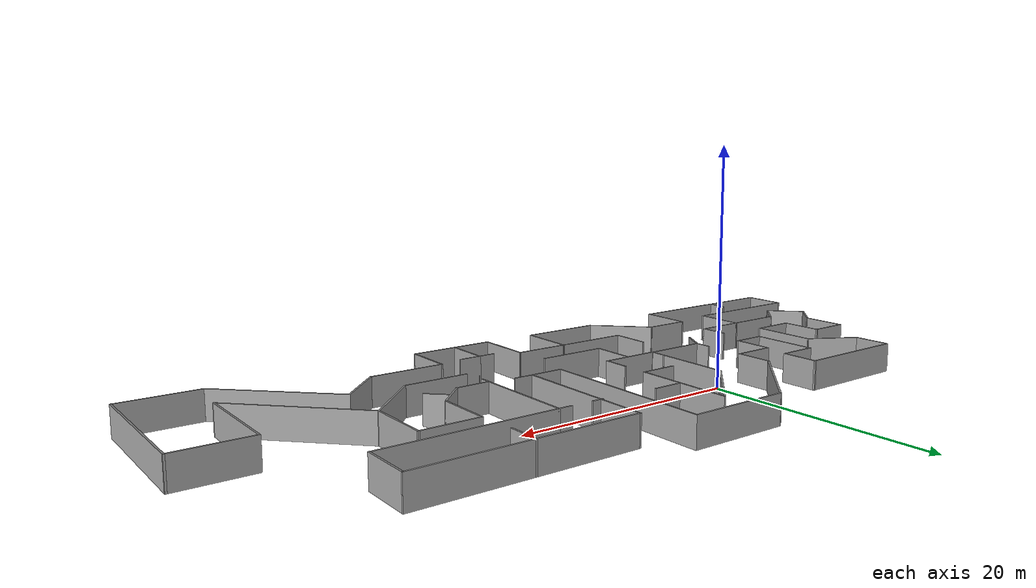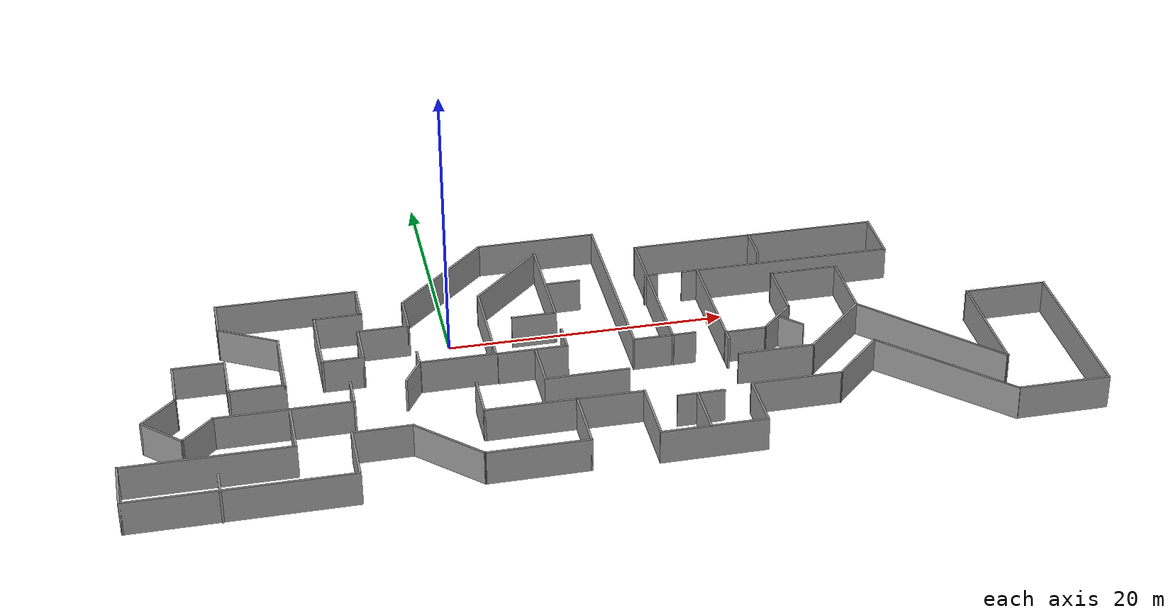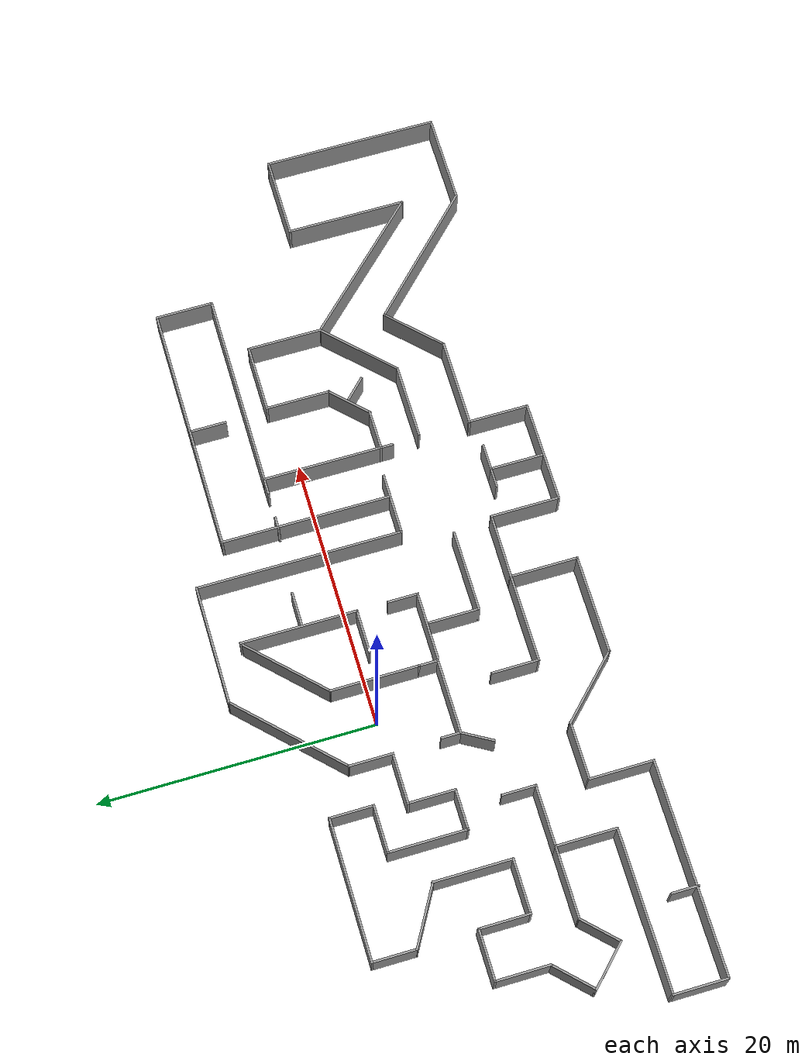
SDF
<?xml version='1.0'?>
<sdf version='1.6'>
  <model name='my_building'>
    <pose frame=''>9.70169 -3.83811 0 0 -0 0</pose>
    <link name='Wall_100'>
      <collision name='Wall_100_Collision'>
        <geometry>
          <box>
            <size>4.75 0.15 2.5</size>
          </box>
        </geometry>
        <pose frame=''>0 0 1.25 0 -0 0</pose>
      </collision>
      <visual name='Wall_100_Visual'>
        <pose frame=''>0 0 1.25 0 -0 0</pose>
        <geometry>
          <box>
            <size>4.75 0.15 2.5</size>
          </box>
        </geometry>
        <material>
          <script>
            <uri>file://media/materials/scripts/gazebo.material</uri>
            <name>Gazebo/Grey</name>
          </script>
          <ambient>1 1 1 1</ambient>
        </material>
      </visual>
      <pose frame=''>14.3736 2.68868 0 0 0 -1.5708</pose>
    </link>
    <link name='Wall_101'>
      <collision name='Wall_101_Collision'>
        <geometry>
          <box>
            <size>3.5 0.15 2.5</size>
          </box>
        </geometry>
        <pose frame=''>0 0 1.25 0 -0 0</pose>
      </collision>
      <visual name='Wall_101_Visual'>
        <pose frame=''>0 0 1.25 0 -0 0</pose>
        <geometry>
          <box>
            <size>3.5 0.15 2.5</size>
          </box>
        </geometry>
        <material>
          <script>
            <uri>file://media/materials/scripts/gazebo.material</uri>
            <name>Gazebo/Grey</name>
          </script>
          <ambient>1 1 1 1</ambient>
        </material>
      </visual>
      <pose frame=''>13.1892 -0.795726 0 0 0 -2.35619</pose>
    </link>
    <link name='Wall_102'>
      <collision name='Wall_102_Collision'>
        <geometry>
          <box>
            <size>3 0.15 2.5</size>
          </box>
        </geometry>
        <pose frame=''>0 0 1.25 0 -0 0</pose>
      </collision>
      <visual name='Wall_102_Visual'>
        <pose frame=''>0 0 1.25 0 -0 0</pose>
        <geometry>
          <box>
            <size>3 0.15 2.5</size>
          </box>
        </geometry>
        <material>
          <script>
            <uri>file://media/materials/scripts/gazebo.material</uri>
            <name>Gazebo/Grey</name>
          </script>
          <ambient>1 1 1 1</ambient>
        </material>
      </visual>
      <pose frame=''>10.5798 -1.98013 0 0 -0 3.14159</pose>
    </link>
    <link name='Wall_103'>
      <collision name='Wall_103_Collision'>
        <geometry>
          <box>
            <size>8.75 0.15 2.5</size>
          </box>
        </geometry>
        <pose frame=''>0 0 1.25 0 -0 0</pose>
      </collision>
      <visual name='Wall_103_Visual'>
        <pose frame=''>0 0 1.25 0 -0 0</pose>
        <geometry>
          <box>
            <size>8.75 0.15 2.5</size>
          </box>
        </geometry>
        <material>
          <script>
            <uri>file://media/materials/scripts/gazebo.material</uri>
            <name>Gazebo/Grey</name>
          </script>
          <ambient>1 1 1 1</ambient>
        </material>
      </visual>
      <pose frame=''>9.15481 2.31987 0 0 -0 1.5708</pose>
    </link>
    <link name='Wall_104'>
      <collision name='Wall_104_Collision'>
        <geometry>
          <box>
            <size>14.5 0.15 2.5</size>
          </box>
        </geometry>
        <pose frame=''>0 0 1.25 0 -0 0</pose>
      </collision>
      <visual name='Wall_104_Visual'>
        <pose frame=''>0 0 1.25 0 -0 0</pose>
        <geometry>
          <box>
            <size>14.5 0.15 2.5</size>
          </box>
        </geometry>
        <material>
          <script>
            <uri>file://media/materials/scripts/gazebo.material</uri>
            <name>Gazebo/Grey</name>
          </script>
          <ambient>1 1 1 1</ambient>
        </material>
      </visual>
      <pose frame=''>16.3298 6.61987 0 0 -0 0</pose>
    </link>
    <link name='Wall_105'>
      <collision name='Wall_105_Collision'>
        <geometry>
          <box>
            <size>4.25 0.15 2.5</size>
          </box>
        </geometry>
        <pose frame=''>0 0 1.25 0 -0 0</pose>
      </collision>
      <visual name='Wall_105_Visual'>
        <pose frame=''>0 0 1.25 0 -0 0</pose>
        <geometry>
          <box>
            <size>4.25 0.15 2.5</size>
          </box>
        </geometry>
        <material>
          <script>
            <uri>file://media/materials/scripts/gazebo.material</uri>
            <name>Gazebo/Grey</name>
          </script>
          <ambient>1 1 1 1</ambient>
        </material>
      </visual>
      <pose frame=''>23.5048 8.66987 0 0 -0 1.5708</pose>
    </link>
    <link name='Wall_106'>
      <collision name='Wall_106_Collision'>
        <geometry>
          <box>
            <size>18.25 0.15 2.5</size>
          </box>
        </geometry>
        <pose frame=''>0 0 1.25 0 -0 0</pose>
      </collision>
      <visual name='Wall_106_Visual'>
        <pose frame=''>0 0 1.25 0 -0 0</pose>
        <geometry>
          <box>
            <size>18.25 0.15 2.5</size>
          </box>
        </geometry>
        <material>
          <script>
            <uri>file://media/materials/scripts/gazebo.material</uri>
            <name>Gazebo/Grey</name>
          </script>
          <ambient>1 1 1 1</ambient>
        </material>
      </visual>
      <pose frame=''>14.4548 10.7199 0 0 -0 3.14159</pose>
    </link>
    <link name='Wall_107'>
      <collision name='Wall_107_Collision'>
        <geometry>
          <box>
            <size>12.4198 0.15 2.5</size>
          </box>
        </geometry>
        <pose frame=''>0 0 1.25 0 -0 0</pose>
      </collision>
      <visual name='Wall_107_Visual'>
        <pose frame=''>0 0 1.25 0 -0 0</pose>
        <geometry>
          <box>
            <size>12.4198 0.15 2.5</size>
          </box>
        </geometry>
        <material>
          <script>
            <uri>file://media/materials/scripts/gazebo.material</uri>
            <name>Gazebo/Grey</name>
          </script>
          <ambient>1 1 1 1</ambient>
        </material>
      </visual>
      <pose frame=''>5.40481 4.5851 0 0 0 -1.5708</pose>
    </link>
    <link name='Wall_113'>
      <collision name='Wall_113_Collision'>
        <geometry>
          <box>
            <size>5 0.15 2.5</size>
          </box>
        </geometry>
        <pose frame=''>0 0 1.25 0 -0 0</pose>
      </collision>
      <visual name='Wall_113_Visual'>
        <pose frame=''>0 0 1.25 0 -0 0</pose>
        <geometry>
          <box>
            <size>5 0.15 2.5</size>
          </box>
        </geometry>
        <material>
          <script>
            <uri>file://media/materials/scripts/gazebo.material</uri>
            <name>Gazebo/Grey</name>
          </script>
          <ambient>1 1 1 1</ambient>
        </material>
      </visual>
      <pose frame=''>-4.53458 -1.30691 0 0 -0 3.14159</pose>
    </link>
    <link name='Wall_115'>
      <collision name='Wall_115_Collision'>
        <geometry>
          <box>
            <size>0.16 0.15 2.5</size>
          </box>
        </geometry>
        <pose frame=''>0 0 1.25 0 -0 0</pose>
      </collision>
      <visual name='Wall_115_Visual'>
        <pose frame=''>0 0 1.25 0 -0 0</pose>
        <geometry>
          <box>
            <size>0.16 0.15 2.5</size>
          </box>
        </geometry>
        <material>
          <script>
            <uri>file://media/materials/scripts/gazebo.material</uri>
            <name>Gazebo/Grey</name>
          </script>
          <ambient>1 1 1 1</ambient>
        </material>
      </visual>
      <pose frame=''>-7.13199 0.094135 0 0 -0 0</pose>
    </link>
    <link name='Wall_117'>
      <collision name='Wall_117_Collision'>
        <geometry>
          <box>
            <size>1.5 0.15 2.5</size>
          </box>
        </geometry>
        <pose frame=''>0 0 1.25 0 -0 0</pose>
      </collision>
      <visual name='Wall_117_Visual'>
        <pose frame=''>0 0 1.25 0 -0 0</pose>
        <geometry>
          <box>
            <size>1.5 0.15 2.5</size>
          </box>
        </geometry>
        <material>
          <script>
            <uri>file://media/materials/scripts/gazebo.material</uri>
            <name>Gazebo/Grey</name>
          </script>
          <ambient>1 1 1 1</ambient>
        </material>
      </visual>
      <pose frame=''>-7.13699 -0.580865 0 0 0 -1.5708</pose>
    </link>
    <link name='Wall_123'>
      <collision name='Wall_123_Collision'>
        <geometry>
          <box>
            <size>8.5 0.15 2.5</size>
          </box>
        </geometry>
        <pose frame=''>0 0 1.25 0 -0 0</pose>
      </collision>
      <visual name='Wall_123_Visual'>
        <pose frame=''>0 0 1.25 0 -0 0</pose>
        <geometry>
          <box>
            <size>8.5 0.15 2.5</size>
          </box>
        </geometry>
        <material>
          <script>
            <uri>file://media/materials/scripts/gazebo.material</uri>
            <name>Gazebo/Grey</name>
          </script>
          <ambient>1 1 1 1</ambient>
        </material>
      </visual>
      <pose frame=''>-2.10958 7.25529 0 0 -0 1.5708</pose>
    </link>
    <link name='Wall_125'>
      <collision name='Wall_125_Collision'>
        <geometry>
          <box>
            <size>8.75864 0.15 2.5</size>
          </box>
        </geometry>
        <pose frame=''>0 0 1.25 0 -0 0</pose>
      </collision>
      <visual name='Wall_125_Visual'>
        <pose frame=''>0 0 1.25 0 -0 0</pose>
        <geometry>
          <box>
            <size>8.75864 0.15 2.5</size>
          </box>
        </geometry>
        <material>
          <script>
            <uri>file://media/materials/scripts/gazebo.material</uri>
            <name>Gazebo/Grey</name>
          </script>
          <ambient>1 1 1 1</ambient>
        </material>
      </visual>
      <pose frame=''>-1.68005 13.3056 0 0 -0 0</pose>
    </link>
    <link name='Wall_128'>
      <collision name='Wall_128_Collision'>
        <geometry>
          <box>
            <size>15 0.15 2.5</size>
          </box>
        </geometry>
        <pose frame=''>0 0 1.25 0 -0 0</pose>
      </collision>
      <visual name='Wall_128_Visual'>
        <pose frame=''>0 0 1.25 0 -0 0</pose>
        <geometry>
          <box>
            <size>15 0.15 2.5</size>
          </box>
        </geometry>
        <material>
          <script>
            <uri>file://media/materials/scripts/gazebo.material</uri>
            <name>Gazebo/Grey</name>
          </script>
          <ambient>1 1 1 1</ambient>
        </material>
      </visual>
      <pose frame=''>2.62427 5.88058 0 0 0 -1.5708</pose>
    </link>
    <link name='Wall_129'>
      <collision name='Wall_129_Collision'>
        <geometry>
          <box>
            <size>2.93054 0.15 2.5</size>
          </box>
        </geometry>
        <pose frame=''>0 0 1.25 0 -0 0</pose>
      </collision>
      <visual name='Wall_129_Visual'>
        <pose frame=''>0 0 1.25 0 -0 0</pose>
        <geometry>
          <box>
            <size>2.93054 0.15 2.5</size>
          </box>
        </geometry>
        <material>
          <script>
            <uri>file://media/materials/scripts/gazebo.material</uri>
            <name>Gazebo/Grey</name>
          </script>
          <ambient>1 1 1 1</ambient>
        </material>
      </visual>
      <pose frame=''>4.01454 -1.54705 0 0 0 -0.001891</pose>
    </link>
    <link name='Wall_131'>
      <collision name='Wall_131_Collision'>
        <geometry>
          <box>
            <size>3.75 0.15 2.5</size>
          </box>
        </geometry>
        <pose frame=''>0 0 1.25 0 -0 0</pose>
      </collision>
      <visual name='Wall_131_Visual'>
        <pose frame=''>0 0 1.25 0 -0 0</pose>
        <geometry>
          <box>
            <size>3.75 0.15 2.5</size>
          </box>
        </geometry>
        <material>
          <script>
            <uri>file://media/materials/scripts/gazebo.material</uri>
            <name>Gazebo/Grey</name>
          </script>
          <ambient>1 1 1 1</ambient>
        </material>
      </visual>
      <pose frame=''>-4.35816 -3.27202 0 0 0 -1.5708</pose>
    </link>
    <link name='Wall_133'>
      <collision name='Wall_133_Collision'>
        <geometry>
          <box>
            <size>5.5 0.15 2.5</size>
          </box>
        </geometry>
        <pose frame=''>0 0 1.25 0 -0 0</pose>
      </collision>
      <visual name='Wall_133_Visual'>
        <pose frame=''>0 0 1.25 0 -0 0</pose>
        <geometry>
          <box>
            <size>5.5 0.15 2.5</size>
          </box>
        </geometry>
        <material>
          <script>
            <uri>file://media/materials/scripts/gazebo.material</uri>
            <name>Gazebo/Grey</name>
          </script>
          <ambient>1 1 1 1</ambient>
        </material>
      </visual>
      <pose frame=''>-9.81199 -1.25587 0 0 -0 3.14159</pose>
    </link>
    <link name='Wall_134'>
      <collision name='Wall_134_Collision'>
        <geometry>
          <box>
            <size>2.5 0.15 2.5</size>
          </box>
        </geometry>
        <pose frame=''>0 0 1.25 0 -0 0</pose>
      </collision>
      <visual name='Wall_134_Visual'>
        <pose frame=''>0 0 1.25 0 -0 0</pose>
        <geometry>
          <box>
            <size>2.5 0.15 2.5</size>
          </box>
        </geometry>
        <material>
          <script>
            <uri>file://media/materials/scripts/gazebo.material</uri>
            <name>Gazebo/Grey</name>
          </script>
          <ambient>1 1 1 1</ambient>
        </material>
      </visual>
      <pose frame=''>-13.0745 -2.27345 0 0 0 -2.0944</pose>
    </link>
    <link name='Wall_136'>
      <collision name='Wall_136_Collision'>
        <geometry>
          <box>
            <size>2.25 0.15 2.5</size>
          </box>
        </geometry>
        <pose frame=''>0 0 1.25 0 -0 0</pose>
      </collision>
      <visual name='Wall_136_Visual'>
        <pose frame=''>0 0 1.25 0 -0 0</pose>
        <geometry>
          <box>
            <size>2.25 0.15 2.5</size>
          </box>
        </geometry>
        <material>
          <script>
            <uri>file://media/materials/scripts/gazebo.material</uri>
            <name>Gazebo/Grey</name>
          </script>
          <ambient>1 1 1 1</ambient>
        </material>
      </visual>
      <pose frame=''>-2.10958 -0.256906 0 0 -0 1.5708</pose>
    </link>
    <link name='Wall_138'>
      <collision name='Wall_138_Collision'>
        <geometry>
          <box>
            <size>1.25 0.15 2.5</size>
          </box>
        </geometry>
        <pose frame=''>0 0 1.25 0 -0 0</pose>
      </collision>
      <visual name='Wall_138_Visual'>
        <pose frame=''>0 0 1.25 0 -0 0</pose>
        <geometry>
          <box>
            <size>1.25 0.15 2.5</size>
          </box>
        </geometry>
        <material>
          <script>
            <uri>file://media/materials/scripts/gazebo.material</uri>
            <name>Gazebo/Grey</name>
          </script>
          <ambient>1 1 1 1</ambient>
        </material>
      </visual>
      <pose frame=''>8.60481 6.61987 0 0 -0 3.14159</pose>
    </link>
    <link name='Wall_140'>
      <collision name='Wall_140_Collision'>
        <geometry>
          <box>
            <size>1 0.15 2.5</size>
          </box>
        </geometry>
        <pose frame=''>0 0 1.25 0 -0 0</pose>
      </collision>
      <visual name='Wall_140_Visual'>
        <pose frame=''>0 0 1.25 0 -0 0</pose>
        <geometry>
          <box>
            <size>1 0.15 2.5</size>
          </box>
        </geometry>
        <material>
          <script>
            <uri>file://media/materials/scripts/gazebo.material</uri>
            <name>Gazebo/Grey</name>
          </script>
          <ambient>1 1 1 1</ambient>
        </material>
      </visual>
      <pose frame=''>5.69542 6.6561 0 0 -0 0</pose>
    </link>
    <link name='Wall_142'>
      <collision name='Wall_142_Collision'>
        <geometry>
          <box>
            <size>2.75 0.15 2.5</size>
          </box>
        </geometry>
        <pose frame=''>0 0 1.25 0 -0 0</pose>
      </collision>
      <visual name='Wall_142_Visual'>
        <pose frame=''>0 0 1.25 0 -0 0</pose>
        <geometry>
          <box>
            <size>2.75 0.15 2.5</size>
          </box>
        </geometry>
        <material>
          <script>
            <uri>file://media/materials/scripts/gazebo.material</uri>
            <name>Gazebo/Grey</name>
          </script>
          <ambient>1 1 1 1</ambient>
        </material>
      </visual>
      <pose frame=''>14.1526 9.42709 0 0 0 -1.5708</pose>
    </link>
    <link name='Wall_144'>
      <collision name='Wall_144_Collision'>
        <geometry>
          <box>
            <size>2 0.15 2.5</size>
          </box>
        </geometry>
        <pose frame=''>0 0 1.25 0 -0 0</pose>
      </collision>
      <visual name='Wall_144_Visual'>
        <pose frame=''>0 0 1.25 0 -0 0</pose>
        <geometry>
          <box>
            <size>2 0.15 2.5</size>
          </box>
        </geometry>
        <material>
          <script>
            <uri>file://media/materials/scripts/gazebo.material</uri>
            <name>Gazebo/Grey</name>
          </script>
          <ambient>1 1 1 1</ambient>
        </material>
      </visual>
      <pose frame=''>14.0665 -1.49229 0 0 0 -0.785398</pose>
    </link>
    <link name='Wall_146'>
      <collision name='Wall_146_Collision'>
        <geometry>
          <box>
            <size>1 0.15 2.5</size>
          </box>
        </geometry>
        <pose frame=''>0 0 1.25 0 -0 0</pose>
      </collision>
      <visual name='Wall_146_Visual'>
        <pose frame=''>0 0 1.25 0 -0 0</pose>
        <geometry>
          <box>
            <size>1 0.15 2.5</size>
          </box>
        </geometry>
        <material>
          <script>
            <uri>file://media/materials/scripts/gazebo.material</uri>
            <name>Gazebo/Grey</name>
          </script>
          <ambient>1 1 1 1</ambient>
        </material>
      </visual>
      <pose frame=''>9.15481 -2.40513 0 0 0 -1.5708</pose>
    </link>
    <link name='Wall_151'>
      <collision name='Wall_151_Collision'>
        <geometry>
          <box>
            <size>2.5 0.15 2.5</size>
          </box>
        </geometry>
        <pose frame=''>0 0 1.25 0 -0 0</pose>
      </collision>
      <visual name='Wall_151_Visual'>
        <pose frame=''>0 0 1.25 0 -0 0</pose>
        <geometry>
          <box>
            <size>2.5 0.15 2.5</size>
          </box>
        </geometry>
        <material>
          <script>
            <uri>file://media/materials/scripts/gazebo.material</uri>
            <name>Gazebo/Grey</name>
          </script>
          <ambient>1 1 1 1</ambient>
        </material>
      </visual>
      <pose frame=''>-0.798896 7.02619 0 0 -0 0</pose>
    </link>
    <link name='Wall_153'>
      <collision name='Wall_153_Collision'>
        <geometry>
          <box>
            <size>1.75 0.15 2.5</size>
          </box>
        </geometry>
        <pose frame=''>0 0 1.25 0 -0 0</pose>
      </collision>
      <visual name='Wall_153_Visual'>
        <pose frame=''>0 0 1.25 0 -0 0</pose>
        <geometry>
          <box>
            <size>1.75 0.15 2.5</size>
          </box>
        </geometry>
        <material>
          <script>
            <uri>file://media/materials/scripts/gazebo.material</uri>
            <name>Gazebo/Grey</name>
          </script>
          <ambient>1 1 1 1</ambient>
        </material>
      </visual>
      <pose frame=''>6.20481 -1.54967 0 0 -0 0</pose>
    </link>
    <link name='Wall_155'>
      <collision name='Wall_155_Collision'>
        <geometry>
          <box>
            <size>1.5 0.15 2.5</size>
          </box>
        </geometry>
        <pose frame=''>0 0 1.25 0 -0 0</pose>
      </collision>
      <visual name='Wall_155_Visual'>
        <pose frame=''>0 0 1.25 0 -0 0</pose>
        <geometry>
          <box>
            <size>1.5 0.15 2.5</size>
          </box>
        </geometry>
        <material>
          <script>
            <uri>file://media/materials/scripts/gazebo.material</uri>
            <name>Gazebo/Grey</name>
          </script>
          <ambient>1 1 1 1</ambient>
        </material>
      </visual>
      <pose frame=''>-12.487 -0.580865 0 0 -0 1.5708</pose>
    </link>
    <link name='Wall_157'>
      <collision name='Wall_157_Collision'>
        <geometry>
          <box>
            <size>5.25 0.15 2.5</size>
          </box>
        </geometry>
        <pose frame=''>0 0 1.25 0 -0 0</pose>
      </collision>
      <visual name='Wall_157_Visual'>
        <pose frame=''>0 0 1.25 0 -0 0</pose>
        <geometry>
          <box>
            <size>5.25 0.15 2.5</size>
          </box>
        </geometry>
        <material>
          <script>
            <uri>file://media/materials/scripts/gazebo.material</uri>
            <name>Gazebo/Grey</name>
          </script>
          <ambient>1 1 1 1</ambient>
        </material>
      </visual>
      <pose frame=''>-24.3433 -5.02823 0 0 -0 0</pose>
    </link>
    <link name='Wall_158'>
      <collision name='Wall_158_Collision'>
        <geometry>
          <box>
            <size>4.5 0.15 2.5</size>
          </box>
        </geometry>
        <pose frame=''>0 0 1.25 0 -0 0</pose>
      </collision>
      <visual name='Wall_158_Visual'>
        <pose frame=''>0 0 1.25 0 -0 0</pose>
        <geometry>
          <box>
            <size>4.5 0.15 2.5</size>
          </box>
        </geometry>
        <material>
          <script>
            <uri>file://media/materials/scripts/gazebo.material</uri>
            <name>Gazebo/Grey</name>
          </script>
          <ambient>1 1 1 1</ambient>
        </material>
      </visual>
      <pose frame=''>-21.7933 -7.20323 0 0 0 -1.5708</pose>
    </link>
    <link name='Wall_159'>
      <collision name='Wall_159_Collision'>
        <geometry>
          <box>
            <size>11.75 0.15 2.5</size>
          </box>
        </geometry>
        <pose frame=''>0 0 1.25 0 -0 0</pose>
      </collision>
      <visual name='Wall_159_Visual'>
        <pose frame=''>0 0 1.25 0 -0 0</pose>
        <geometry>
          <box>
            <size>11.75 0.15 2.5</size>
          </box>
        </geometry>
        <material>
          <script>
            <uri>file://media/materials/scripts/gazebo.material</uri>
            <name>Gazebo/Grey</name>
          </script>
          <ambient>1 1 1 1</ambient>
        </material>
      </visual>
      <pose frame=''>-27.5933 -9.37823 0 0 -0 3.14159</pose>
    </link>
    <link name='Wall_160'>
      <collision name='Wall_160_Collision'>
        <geometry>
          <box>
            <size>4 0.15 2.5</size>
          </box>
        </geometry>
        <pose frame=''>0 0 1.25 0 -0 0</pose>
      </collision>
      <visual name='Wall_160_Visual'>
        <pose frame=''>0 0 1.25 0 -0 0</pose>
        <geometry>
          <box>
            <size>4 0.15 2.5</size>
          </box>
        </geometry>
        <material>
          <script>
            <uri>file://media/materials/scripts/gazebo.material</uri>
            <name>Gazebo/Grey</name>
          </script>
          <ambient>1 1 1 1</ambient>
        </material>
      </visual>
      <pose frame=''>-33.3933 -11.3032 0 0 0 -1.5708</pose>
    </link>
    <link name='Wall_161'>
      <collision name='Wall_161_Collision'>
        <geometry>
          <box>
            <size>15.5 0.15 2.5</size>
          </box>
        </geometry>
        <pose frame=''>0 0 1.25 0 -0 0</pose>
      </collision>
      <visual name='Wall_161_Visual'>
        <pose frame=''>0 0 1.25 0 -0 0</pose>
        <geometry>
          <box>
            <size>15.5 0.15 2.5</size>
          </box>
        </geometry>
        <material>
          <script>
            <uri>file://media/materials/scripts/gazebo.material</uri>
            <name>Gazebo/Grey</name>
          </script>
          <ambient>1 1 1 1</ambient>
        </material>
      </visual>
      <pose frame=''>-25.7183 -13.2282 0 0 -0 0</pose>
    </link>
    <link name='Wall_162'>
      <collision name='Wall_162_Collision'>
        <geometry>
          <box>
            <size>4.75 0.15 2.5</size>
          </box>
        </geometry>
        <pose frame=''>0 0 1.25 0 -0 0</pose>
      </collision>
      <visual name='Wall_162_Visual'>
        <pose frame=''>0 0 1.25 0 -0 0</pose>
        <geometry>
          <box>
            <size>4.75 0.15 2.5</size>
          </box>
        </geometry>
        <material>
          <script>
            <uri>file://media/materials/scripts/gazebo.material</uri>
            <name>Gazebo/Grey</name>
          </script>
          <ambient>1 1 1 1</ambient>
        </material>
      </visual>
      <pose frame=''>-18.0433 -10.9282 0 0 -0 1.5708</pose>
    </link>
    <link name='Wall_163'>
      <collision name='Wall_163_Collision'>
        <geometry>
          <box>
            <size>4.25 0.15 2.5</size>
          </box>
        </geometry>
        <pose frame=''>0 0 1.25 0 -0 0</pose>
      </collision>
      <visual name='Wall_163_Visual'>
        <pose frame=''>0 0 1.25 0 -0 0</pose>
        <geometry>
          <box>
            <size>4.25 0.15 2.5</size>
          </box>
        </geometry>
        <material>
          <script>
            <uri>file://media/materials/scripts/gazebo.material</uri>
            <name>Gazebo/Grey</name>
          </script>
          <ambient>1 1 1 1</ambient>
        </material>
      </visual>
      <pose frame=''>-15.9933 -8.62823 0 0 -0 0</pose>
    </link>
    <link name='Wall_164'>
      <collision name='Wall_164_Collision'>
        <geometry>
          <box>
            <size>6 0.15 2.5</size>
          </box>
        </geometry>
        <pose frame=''>0 0 1.25 0 -0 0</pose>
      </collision>
      <visual name='Wall_164_Visual'>
        <pose frame=''>0 0 1.25 0 -0 0</pose>
        <geometry>
          <box>
            <size>6 0.15 2.5</size>
          </box>
        </geometry>
        <material>
          <script>
            <uri>file://media/materials/scripts/gazebo.material</uri>
            <name>Gazebo/Grey</name>
          </script>
          <ambient>1 1 1 1</ambient>
        </material>
      </visual>
      <pose frame=''>-11.875 -10.6965 0 0 0 -0.785398</pose>
    </link>
    <link name='Wall_165'>
      <collision name='Wall_165_Collision'>
        <geometry>
          <box>
            <size>7.25 0.15 2.5</size>
          </box>
        </geometry>
        <pose frame=''>0 0 1.25 0 -0 0</pose>
      </collision>
      <visual name='Wall_165_Visual'>
        <pose frame=''>0 0 1.25 0 -0 0</pose>
        <geometry>
          <box>
            <size>7.25 0.15 2.5</size>
          </box>
        </geometry>
        <material>
          <script>
            <uri>file://media/materials/scripts/gazebo.material</uri>
            <name>Gazebo/Grey</name>
          </script>
          <ambient>1 1 1 1</ambient>
        </material>
      </visual>
      <pose frame=''>-6.25671 -12.7648 0 0 -0 0</pose>
    </link>
    <link name='Wall_166'>
      <collision name='Wall_166_Collision'>
        <geometry>
          <box>
            <size>5 0.15 2.5</size>
          </box>
        </geometry>
        <pose frame=''>0 0 1.25 0 -0 0</pose>
      </collision>
      <visual name='Wall_166_Visual'>
        <pose frame=''>0 0 1.25 0 -0 0</pose>
        <geometry>
          <box>
            <size>5 0.15 2.5</size>
          </box>
        </geometry>
        <material>
          <script>
            <uri>file://media/materials/scripts/gazebo.material</uri>
            <name>Gazebo/Grey</name>
          </script>
          <ambient>1 1 1 1</ambient>
        </material>
      </visual>
      <pose frame=''>-2.70671 -10.3398 0 0 -0 1.5708</pose>
    </link>
    <link name='Wall_167'>
      <collision name='Wall_167_Collision'>
        <geometry>
          <box>
            <size>6.5 0.15 2.5</size>
          </box>
        </geometry>
        <pose frame=''>0 0 1.25 0 -0 0</pose>
      </collision>
      <visual name='Wall_167_Visual'>
        <pose frame=''>0 0 1.25 0 -0 0</pose>
        <geometry>
          <box>
            <size>6.5 0.15 2.5</size>
          </box>
        </geometry>
        <material>
          <script>
            <uri>file://media/materials/scripts/gazebo.material</uri>
            <name>Gazebo/Grey</name>
          </script>
          <ambient>1 1 1 1</ambient>
        </material>
      </visual>
      <pose frame=''>-5.88171 -7.9148 0 0 -0 3.14159</pose>
    </link>
    <link name='Wall_170'>
      <collision name='Wall_170_Collision'>
        <geometry>
          <box>
            <size>12.75 0.15 2.5</size>
          </box>
        </geometry>
        <pose frame=''>0 0 1.25 0 -0 0</pose>
      </collision>
      <visual name='Wall_170_Visual'>
        <pose frame=''>0 0 1.25 0 -0 0</pose>
        <geometry>
          <box>
            <size>12.75 0.15 2.5</size>
          </box>
        </geometry>
        <material>
          <script>
            <uri>file://media/materials/scripts/gazebo.material</uri>
            <name>Gazebo/Grey</name>
          </script>
          <ambient>1 1 1 1</ambient>
        </material>
      </visual>
      <pose frame=''>33.3933 -6.7148 0 0 -0 1.5708</pose>
    </link>
    <link name='Wall_171'>
      <collision name='Wall_171_Collision'>
        <geometry>
          <box>
            <size>6 0.15 2.5</size>
          </box>
        </geometry>
        <pose frame=''>0 0 1.25 0 -0 0</pose>
      </collision>
      <visual name='Wall_171_Visual'>
        <pose frame=''>0 0 1.25 0 -0 0</pose>
        <geometry>
          <box>
            <size>6 0.15 2.5</size>
          </box>
        </geometry>
        <material>
          <script>
            <uri>file://media/materials/scripts/gazebo.material</uri>
            <name>Gazebo/Grey</name>
          </script>
          <ambient>1 1 1 1</ambient>
        </material>
      </visual>
      <pose frame=''>30.4683 -0.414801 0 0 -0 3.14159</pose>
    </link>
    <link name='Wall_172'>
      <collision name='Wall_172_Collision'>
        <geometry>
          <box>
            <size>8.75 0.15 2.5</size>
          </box>
        </geometry>
        <pose frame=''>0 0 1.25 0 -0 0</pose>
      </collision>
      <visual name='Wall_172_Visual'>
        <pose frame=''>0 0 1.25 0 -0 0</pose>
        <geometry>
          <box>
            <size>8.75 0.15 2.5</size>
          </box>
        </geometry>
        <material>
          <script>
            <uri>file://media/materials/scripts/gazebo.material</uri>
            <name>Gazebo/Grey</name>
          </script>
          <ambient>1 1 1 1</ambient>
        </material>
      </visual>
      <pose frame=''>27.5433 -4.7148 0 0 0 -1.5708</pose>
    </link>
    <link name='Wall_173'>
      <collision name='Wall_173_Collision'>
        <geometry>
          <box>
            <size>12.1541 0.15 2.5</size>
          </box>
        </geometry>
        <pose frame=''>0 0 1.25 0 -0 0</pose>
      </collision>
      <visual name='Wall_173_Visual'>
        <pose frame=''>0 0 1.25 0 -0 0</pose>
        <geometry>
          <box>
            <size>12.1541 0.15 2.5</size>
          </box>
        </geometry>
        <material>
          <script>
            <uri>file://media/materials/scripts/gazebo.material</uri>
            <name>Gazebo/Grey</name>
          </script>
          <ambient>1 1 1 1</ambient>
        </material>
      </visual>
      <pose frame=''>23.3835 -4.68806 0 0 -0 2.33653</pose>
    </link>
    <link name='Wall_175'>
      <collision name='Wall_175_Collision'>
        <geometry>
          <box>
            <size>6.5 0.15 2.5</size>
          </box>
        </geometry>
        <pose frame=''>0 0 1.25 0 -0 0</pose>
      </collision>
      <visual name='Wall_175_Visual'>
        <pose frame=''>0 0 1.25 0 -0 0</pose>
        <geometry>
          <box>
            <size>6.5 0.15 2.5</size>
          </box>
        </geometry>
        <material>
          <script>
            <uri>file://media/materials/scripts/gazebo.material</uri>
            <name>Gazebo/Grey</name>
          </script>
          <ambient>1 1 1 1</ambient>
        </material>
      </visual>
      <pose frame=''>16.9786 -2.60639 0 0 0 -2.35619</pose>
    </link>
    <link name='Wall_178'>
      <collision name='Wall_178_Collision'>
        <geometry>
          <box>
            <size>6.5 0.15 2.5</size>
          </box>
        </geometry>
        <pose frame=''>0 0 1.25 0 -0 0</pose>
      </collision>
      <visual name='Wall_178_Visual'>
        <pose frame=''>0 0 1.25 0 -0 0</pose>
        <geometry>
          <box>
            <size>6.5 0.15 2.5</size>
          </box>
        </geometry>
        <material>
          <script>
            <uri>file://media/materials/scripts/gazebo.material</uri>
            <name>Gazebo/Grey</name>
          </script>
          <ambient>1 1 1 1</ambient>
        </material>
      </visual>
      <pose frame=''>12.475 -8.60261 0 0 -0 0</pose>
    </link>
    <link name='Wall_179'>
      <collision name='Wall_179_Collision'>
        <geometry>
          <box>
            <size>5 0.15 2.5</size>
          </box>
        </geometry>
        <pose frame=''>0 0 1.25 0 -0 0</pose>
      </collision>
      <visual name='Wall_179_Visual'>
        <pose frame=''>0 0 1.25 0 -0 0</pose>
        <geometry>
          <box>
            <size>5 0.15 2.5</size>
          </box>
        </geometry>
        <material>
          <script>
            <uri>file://media/materials/scripts/gazebo.material</uri>
            <name>Gazebo/Grey</name>
          </script>
          <ambient>1 1 1 1</ambient>
        </material>
      </visual>
      <pose frame=''>17.3648 -6.88788 0 0 -0 0.785398</pose>
    </link>
    <link name='Wall_180'>
      <collision name='Wall_180_Collision'>
        <geometry>
          <box>
            <size>11.25 0.15 2.5</size>
          </box>
        </geometry>
        <pose frame=''>0 0 1.25 0 -0 0</pose>
      </collision>
      <visual name='Wall_180_Visual'>
        <pose frame=''>0 0 1.25 0 -0 0</pose>
        <geometry>
          <box>
            <size>11.25 0.15 2.5</size>
          </box>
        </geometry>
        <material>
          <script>
            <uri>file://media/materials/scripts/gazebo.material</uri>
            <name>Gazebo/Grey</name>
          </script>
          <ambient>1 1 1 1</ambient>
        </material>
      </visual>
      <pose frame=''>23.004 -9.09759 0 0 0 -0.785398</pose>
    </link>
    <link name='Wall_182'>
      <collision name='Wall_182_Collision'>
        <geometry>
          <box>
            <size>6.5 0.15 2.5</size>
          </box>
        </geometry>
        <pose frame=''>0 0 1.25 0 -0 0</pose>
      </collision>
      <visual name='Wall_182_Visual'>
        <pose frame=''>0 0 1.25 0 -0 0</pose>
        <geometry>
          <box>
            <size>6.5 0.15 2.5</size>
          </box>
        </geometry>
        <material>
          <script>
            <uri>file://media/materials/scripts/gazebo.material</uri>
            <name>Gazebo/Grey</name>
          </script>
          <ambient>1 1 1 1</ambient>
        </material>
      </visual>
      <pose frame=''>30.2183 -13.0148 0 0 -0 3.14159</pose>
    </link>
    <link name='Wall_184'>
      <collision name='Wall_184_Collision'>
        <geometry>
          <box>
            <size>5.5 0.15 2.5</size>
          </box>
        </geometry>
        <pose frame=''>0 0 1.25 0 -0 0</pose>
      </collision>
      <visual name='Wall_184_Visual'>
        <pose frame=''>0 0 1.25 0 -0 0</pose>
        <geometry>
          <box>
            <size>5.5 0.15 2.5</size>
          </box>
        </geometry>
        <material>
          <script>
            <uri>file://media/materials/scripts/gazebo.material</uri>
            <name>Gazebo/Grey</name>
          </script>
          <ambient>1 1 1 1</ambient>
        </material>
      </visual>
      <pose frame=''>12.0585 -4.85145 0 0 -0 3.14159</pose>
    </link>
    <link name='Wall_186'>
      <collision name='Wall_186_Collision'>
        <geometry>
          <box>
            <size>4.4628 0.15 2.5</size>
          </box>
        </geometry>
        <pose frame=''>0 0 1.25 0 -0 0</pose>
      </collision>
      <visual name='Wall_186_Visual'>
        <pose frame=''>0 0 1.25 0 -0 0</pose>
        <geometry>
          <box>
            <size>4.4628 0.15 2.5</size>
          </box>
        </geometry>
        <material>
          <script>
            <uri>file://media/materials/scripts/gazebo.material</uri>
            <name>Gazebo/Grey</name>
          </script>
          <ambient>1 1 1 1</ambient>
        </material>
      </visual>
      <pose frame=''>9.30005 -10.759 0 0 0 -1.5708</pose>
    </link>
    <link name='Wall_187'>
      <collision name='Wall_187_Collision'>
        <geometry>
          <box>
            <size>7.5 0.15 2.5</size>
          </box>
        </geometry>
        <pose frame=''>0 0 1.25 0 -0 0</pose>
      </collision>
      <visual name='Wall_187_Visual'>
        <pose frame=''>0 0 1.25 0 -0 0</pose>
        <geometry>
          <box>
            <size>7.5 0.15 2.5</size>
          </box>
        </geometry>
        <material>
          <script>
            <uri>file://media/materials/scripts/gazebo.material</uri>
            <name>Gazebo/Grey</name>
          </script>
          <ambient>1 1 1 1</ambient>
        </material>
      </visual>
      <pose frame=''>5.62505 -12.9154 0 0 -0 3.14159</pose>
    </link>
    <link name='Wall_188'>
      <collision name='Wall_188_Collision'>
        <geometry>
          <box>
            <size>5 0.15 2.5</size>
          </box>
        </geometry>
        <pose frame=''>0 0 1.25 0 -0 0</pose>
      </collision>
      <visual name='Wall_188_Visual'>
        <pose frame=''>0 0 1.25 0 -0 0</pose>
        <geometry>
          <box>
            <size>5 0.15 2.5</size>
          </box>
        </geometry>
        <material>
          <script>
            <uri>file://media/materials/scripts/gazebo.material</uri>
            <name>Gazebo/Grey</name>
          </script>
          <ambient>1 1 1 1</ambient>
        </material>
      </visual>
      <pose frame=''>1.95005 -10.384 0 0 -0 1.5708</pose>
    </link>
    <link name='Wall_189'>
      <collision name='Wall_189_Collision'>
        <geometry>
          <box>
            <size>4.80697 0.15 2.5</size>
          </box>
        </geometry>
        <pose frame=''>0 0 1.25 0 -0 0</pose>
      </collision>
      <visual name='Wall_189_Visual'>
        <pose frame=''>0 0 1.25 0 -0 0</pose>
        <geometry>
          <box>
            <size>4.80697 0.15 2.5</size>
          </box>
        </geometry>
        <material>
          <script>
            <uri>file://media/materials/scripts/gazebo.material</uri>
            <name>Gazebo/Grey</name>
          </script>
          <ambient>1 1 1 1</ambient>
        </material>
      </visual>
      <pose frame=''>-0.378332 -7.93691 0 0 -0 3.1321</pose>
    </link>
    <link name='Wall_191'>
      <collision name='Wall_191_Collision'>
        <geometry>
          <box>
            <size>3.25 0.15 2.5</size>
          </box>
        </geometry>
        <pose frame=''>0 0 1.25 0 -0 0</pose>
      </collision>
      <visual name='Wall_191_Visual'>
        <pose frame=''>0 0 1.25 0 -0 0</pose>
        <geometry>
          <box>
            <size>3.25 0.15 2.5</size>
          </box>
        </geometry>
        <material>
          <script>
            <uri>file://media/materials/scripts/gazebo.material</uri>
            <name>Gazebo/Grey</name>
          </script>
          <ambient>1 1 1 1</ambient>
        </material>
      </visual>
      <pose frame=''>-3.65958 3.08029 0 0 -0 3.14159</pose>
    </link>
    <link name='Wall_193'>
      <collision name='Wall_193_Collision'>
        <geometry>
          <box>
            <size>3.5 0.15 2.5</size>
          </box>
        </geometry>
        <pose frame=''>0 0 1.25 0 -0 0</pose>
      </collision>
      <visual name='Wall_193_Visual'>
        <pose frame=''>0 0 1.25 0 -0 0</pose>
        <geometry>
          <box>
            <size>3.5 0.15 2.5</size>
          </box>
        </geometry>
        <material>
          <script>
            <uri>file://media/materials/scripts/gazebo.material</uri>
            <name>Gazebo/Grey</name>
          </script>
          <ambient>1 1 1 1</ambient>
        </material>
      </visual>
      <pose frame=''>-9.05671 -6.2398 0 0 -0 1.5708</pose>
    </link>
    <link name='Wall_195'>
      <collision name='Wall_195_Collision'>
        <geometry>
          <box>
            <size>4.5 0.15 2.5</size>
          </box>
        </geometry>
        <pose frame=''>0 0 1.25 0 -0 0</pose>
      </collision>
      <visual name='Wall_195_Visual'>
        <pose frame=''>0 0 1.25 0 -0 0</pose>
        <geometry>
          <box>
            <size>4.5 0.15 2.5</size>
          </box>
        </geometry>
        <material>
          <script>
            <uri>file://media/materials/scripts/gazebo.material</uri>
            <name>Gazebo/Grey</name>
          </script>
          <ambient>1 1 1 1</ambient>
        </material>
      </visual>
      <pose frame=''>-19.6183 -5.02823 0 0 -0 0</pose>
    </link>
    <link name='Wall_197'>
      <collision name='Wall_197_Collision'>
        <geometry>
          <box>
            <size>2 0.15 2.5</size>
          </box>
        </geometry>
        <pose frame=''>0 0 1.25 0 -0 0</pose>
      </collision>
      <visual name='Wall_197_Visual'>
        <pose frame=''>0 0 1.25 0 -0 0</pose>
        <geometry>
          <box>
            <size>2 0.15 2.5</size>
          </box>
        </geometry>
        <material>
          <script>
            <uri>file://media/materials/scripts/gazebo.material</uri>
            <name>Gazebo/Grey</name>
          </script>
          <ambient>1 1 1 1</ambient>
        </material>
      </visual>
      <pose frame=''>-27.0126 -12.4116 0 0 -0 1.5708</pose>
    </link>
    <link name='Wall_199'>
      <collision name='Wall_199_Collision'>
        <geometry>
          <box>
            <size>6 0.15 2.5</size>
          </box>
        </geometry>
        <pose frame=''>0 0 1.25 0 -0 0</pose>
      </collision>
      <visual name='Wall_199_Visual'>
        <pose frame=''>0 0 1.25 0 -0 0</pose>
        <geometry>
          <box>
            <size>6 0.15 2.5</size>
          </box>
        </geometry>
        <material>
          <script>
            <uri>file://media/materials/scripts/gazebo.material</uri>
            <name>Gazebo/Grey</name>
          </script>
          <ambient>1 1 1 1</ambient>
        </material>
      </visual>
      <pose frame=''>-1.43316 -5.07202 0 0 -0 0</pose>
    </link>
    <link name='Wall_201'>
      <collision name='Wall_201_Collision'>
        <geometry>
          <box>
            <size>2.5 0.15 2.5</size>
          </box>
        </geometry>
        <pose frame=''>0 0 1.25 0 -0 0</pose>
      </collision>
      <visual name='Wall_201_Visual'>
        <pose frame=''>0 0 1.25 0 -0 0</pose>
        <geometry>
          <box>
            <size>2.5 0.15 2.5</size>
          </box>
        </geometry>
        <material>
          <script>
            <uri>file://media/materials/scripts/gazebo.material</uri>
            <name>Gazebo/Grey</name>
          </script>
          <ambient>1 1 1 1</ambient>
        </material>
      </visual>
      <pose frame=''>-17.4433 -3.85323 0 0 -0 1.5708</pose>
    </link>
    <link name='Wall_203'>
      <collision name='Wall_203_Collision'>
        <geometry>
          <box>
            <size>4 0.15 2.5</size>
          </box>
        </geometry>
        <pose frame=''>0 0 1.25 0 -0 0</pose>
      </collision>
      <visual name='Wall_203_Visual'>
        <pose frame=''>0 0 1.25 0 -0 0</pose>
        <geometry>
          <box>
            <size>4 0.15 2.5</size>
          </box>
        </geometry>
        <material>
          <script>
            <uri>file://media/materials/scripts/gazebo.material</uri>
            <name>Gazebo/Grey</name>
          </script>
          <ambient>1 1 1 1</ambient>
        </material>
      </visual>
      <pose frame=''>5.39437 -10.9178 0 0 -0 1.5708</pose>
    </link>
    <link name='Wall_204'>
      <collision name='Wall_204_Collision'>
        <geometry>
          <box>
            <size>1.5 0.15 2.5</size>
          </box>
        </geometry>
        <pose frame=''>0 0 1.25 0 -0 0</pose>
      </collision>
      <visual name='Wall_204_Visual'>
        <pose frame=''>0 0 1.25 0 -0 0</pose>
        <geometry>
          <box>
            <size>1.5 0.15 2.5</size>
          </box>
        </geometry>
        <material>
          <script>
            <uri>file://media/materials/scripts/gazebo.material</uri>
            <name>Gazebo/Grey</name>
          </script>
          <ambient>1 1 1 1</ambient>
        </material>
      </visual>
      <pose frame=''>4.71937 -8.9928 0 0 -0 3.14159</pose>
    </link>
    <link name='Wall_206'>
      <collision name='Wall_206_Collision'>
        <geometry>
          <box>
            <size>2 0.15 2.5</size>
          </box>
        </geometry>
        <pose frame=''>0 0 1.25 0 -0 0</pose>
      </collision>
      <visual name='Wall_206_Visual'>
        <pose frame=''>0 0 1.25 0 -0 0</pose>
        <geometry>
          <box>
            <size>2 0.15 2.5</size>
          </box>
        </geometry>
        <material>
          <script>
            <uri>file://media/materials/scripts/gazebo.material</uri>
            <name>Gazebo/Grey</name>
          </script>
          <ambient>1 1 1 1</ambient>
        </material>
      </visual>
      <pose frame=''>6.31937 -8.9928 0 0 -0 0</pose>
    </link>
    <link name='Wall_69'>
      <collision name='Wall_69_Collision'>
        <geometry>
          <box>
            <size>3.25 0.15 2.5</size>
          </box>
        </geometry>
        <pose frame=''>0 0 1.25 0 -0 0</pose>
      </collision>
      <visual name='Wall_69_Visual'>
        <pose frame=''>0 0 1.25 0 -0 0</pose>
        <geometry>
          <box>
            <size>3.25 0.15 2.5</size>
          </box>
        </geometry>
        <material>
          <script>
            <uri>file://media/materials/scripts/gazebo.material</uri>
            <name>Gazebo/Grey</name>
          </script>
          <ambient>1 1 1 1</ambient>
        </material>
      </visual>
      <pose frame=''>-12.5958 5.14414 0 0 -0 1.5708</pose>
    </link>
    <link name='Wall_70'>
      <collision name='Wall_70_Collision'>
        <geometry>
          <box>
            <size>9.5 0.15 2.5</size>
          </box>
        </geometry>
        <pose frame=''>0 0 1.25 0 -0 0</pose>
      </collision>
      <visual name='Wall_70_Visual'>
        <pose frame=''>0 0 1.25 0 -0 0</pose>
        <geometry>
          <box>
            <size>9.5 0.15 2.5</size>
          </box>
        </geometry>
        <material>
          <script>
            <uri>file://media/materials/scripts/gazebo.material</uri>
            <name>Gazebo/Grey</name>
          </script>
          <ambient>1 1 1 1</ambient>
        </material>
      </visual>
      <pose frame=''>-9.29009 9.99986 0 0 -0 0.785398</pose>
    </link>
    <link name='Wall_72'>
      <collision name='Wall_72_Collision'>
        <geometry>
          <box>
            <size>6.5 0.15 2.5</size>
          </box>
        </geometry>
        <pose frame=''>0 0 1.25 0 -0 0</pose>
      </collision>
      <visual name='Wall_72_Visual'>
        <pose frame=''>0 0 1.25 0 -0 0</pose>
        <geometry>
          <box>
            <size>6.5 0.15 2.5</size>
          </box>
        </geometry>
        <material>
          <script>
            <uri>file://media/materials/scripts/gazebo.material</uri>
            <name>Gazebo/Grey</name>
          </script>
          <ambient>1 1 1 1</ambient>
        </material>
      </visual>
      <pose frame=''>-7.13699 3.26913 0 0 -0 1.5708</pose>
    </link>
    <link name='Wall_73'>
      <collision name='Wall_73_Collision'>
        <geometry>
          <box>
            <size>7 0.15 2.5</size>
          </box>
        </geometry>
        <pose frame=''>0 0 1.25 0 -0 0</pose>
      </collision>
      <visual name='Wall_73_Visual'>
        <pose frame=''>0 0 1.25 0 -0 0</pose>
        <geometry>
          <box>
            <size>7 0.15 2.5</size>
          </box>
        </geometry>
        <material>
          <script>
            <uri>file://media/materials/scripts/gazebo.material</uri>
            <name>Gazebo/Grey</name>
          </script>
          <ambient>1 1 1 1</ambient>
        </material>
      </visual>
      <pose frame=''>-4.71515 8.86598 0 0 -0 0.785398</pose>
    </link>
    <link name='Wall_78'>
      <collision name='Wall_78_Collision'>
        <geometry>
          <box>
            <size>3.75 0.15 2.5</size>
          </box>
        </geometry>
        <pose frame=''>0 0 1.25 0 -0 0</pose>
      </collision>
      <visual name='Wall_78_Visual'>
        <pose frame=''>0 0 1.25 0 -0 0</pose>
        <geometry>
          <box>
            <size>3.75 0.15 2.5</size>
          </box>
        </geometry>
        <material>
          <script>
            <uri>file://media/materials/scripts/gazebo.material</uri>
            <name>Gazebo/Grey</name>
          </script>
          <ambient>1 1 1 1</ambient>
        </material>
      </visual>
      <pose frame=''>-14.3958 3.59414 0 0 -0 3.14159</pose>
    </link>
    <link name='Wall_79'>
      <collision name='Wall_79_Collision'>
        <geometry>
          <box>
            <size>3.5 0.15 2.5</size>
          </box>
        </geometry>
        <pose frame=''>0 0 1.25 0 -0 0</pose>
      </collision>
      <visual name='Wall_79_Visual'>
        <pose frame=''>0 0 1.25 0 -0 0</pose>
        <geometry>
          <box>
            <size>3.5 0.15 2.5</size>
          </box>
        </geometry>
        <material>
          <script>
            <uri>file://media/materials/scripts/gazebo.material</uri>
            <name>Gazebo/Grey</name>
          </script>
          <ambient>1 1 1 1</ambient>
        </material>
      </visual>
      <pose frame=''>-16.1958 1.91913 0 0 0 -1.5708</pose>
    </link>
    <link name='Wall_80'>
      <collision name='Wall_80_Collision'>
        <geometry>
          <box>
            <size>3 0.15 2.5</size>
          </box>
        </geometry>
        <pose frame=''>0 0 1.25 0 -0 0</pose>
      </collision>
      <visual name='Wall_80_Visual'>
        <pose frame=''>0 0 1.25 0 -0 0</pose>
        <geometry>
          <box>
            <size>3 0.15 2.5</size>
          </box>
        </geometry>
        <material>
          <script>
            <uri>file://media/materials/scripts/gazebo.material</uri>
            <name>Gazebo/Grey</name>
          </script>
          <ambient>1 1 1 1</ambient>
        </material>
      </visual>
      <pose frame=''>-17.6208 0.244134 0 0 -0 3.14159</pose>
    </link>
    <link name='Wall_81'>
      <collision name='Wall_81_Collision'>
        <geometry>
          <box>
            <size>5.75 0.15 2.5</size>
          </box>
        </geometry>
        <pose frame=''>0 0 1.25 0 -0 0</pose>
      </collision>
      <visual name='Wall_81_Visual'>
        <pose frame=''>0 0 1.25 0 -0 0</pose>
        <geometry>
          <box>
            <size>5.75 0.15 2.5</size>
          </box>
        </geometry>
        <material>
          <script>
            <uri>file://media/materials/scripts/gazebo.material</uri>
            <name>Gazebo/Grey</name>
          </script>
          <ambient>1 1 1 1</ambient>
        </material>
      </visual>
      <pose frame=''>-19.0458 3.04413 0 0 -0 1.5708</pose>
    </link>
    <link name='Wall_82'>
      <collision name='Wall_82_Collision'>
        <geometry>
          <box>
            <size>3.5 0.15 2.5</size>
          </box>
        </geometry>
        <pose frame=''>0 0 1.25 0 -0 0</pose>
      </collision>
      <visual name='Wall_82_Visual'>
        <pose frame=''>0 0 1.25 0 -0 0</pose>
        <geometry>
          <box>
            <size>3.5 0.15 2.5</size>
          </box>
        </geometry>
        <material>
          <script>
            <uri>file://media/materials/scripts/gazebo.material</uri>
            <name>Gazebo/Grey</name>
          </script>
          <ambient>1 1 1 1</ambient>
        </material>
      </visual>
      <pose frame=''>-17.3708 5.84413 0 0 -0 0</pose>
    </link>
    <link name='Wall_83'>
      <collision name='Wall_83_Collision'>
        <geometry>
          <box>
            <size>3.25 0.15 2.5</size>
          </box>
        </geometry>
        <pose frame=''>0 0 1.25 0 -0 0</pose>
      </collision>
      <visual name='Wall_83_Visual'>
        <pose frame=''>0 0 1.25 0 -0 0</pose>
        <geometry>
          <box>
            <size>3.25 0.15 2.5</size>
          </box>
        </geometry>
        <material>
          <script>
            <uri>file://media/materials/scripts/gazebo.material</uri>
            <name>Gazebo/Grey</name>
          </script>
          <ambient>1 1 1 1</ambient>
        </material>
      </visual>
      <pose frame=''>-15.6958 7.39414 0 0 -0 1.5708</pose>
    </link>
    <link name='Wall_84'>
      <collision name='Wall_84_Collision'>
        <geometry>
          <box>
            <size>10.25 0.15 2.5</size>
          </box>
        </geometry>
        <pose frame=''>0 0 1.25 0 -0 0</pose>
      </collision>
      <visual name='Wall_84_Visual'>
        <pose frame=''>0 0 1.25 0 -0 0</pose>
        <geometry>
          <box>
            <size>10.25 0.15 2.5</size>
          </box>
        </geometry>
        <material>
          <script>
            <uri>file://media/materials/scripts/gazebo.material</uri>
            <name>Gazebo/Grey</name>
          </script>
          <ambient>1 1 1 1</ambient>
        </material>
      </visual>
      <pose frame=''>-20.7458 8.94413 0 0 -0 3.14159</pose>
    </link>
    <link name='Wall_85'>
      <collision name='Wall_85_Collision'>
        <geometry>
          <box>
            <size>3.25 0.15 2.5</size>
          </box>
        </geometry>
        <pose frame=''>0 0 1.25 0 -0 0</pose>
      </collision>
      <visual name='Wall_85_Visual'>
        <pose frame=''>0 0 1.25 0 -0 0</pose>
        <geometry>
          <box>
            <size>3.25 0.15 2.5</size>
          </box>
        </geometry>
        <material>
          <script>
            <uri>file://media/materials/scripts/gazebo.material</uri>
            <name>Gazebo/Grey</name>
          </script>
          <ambient>1 1 1 1</ambient>
        </material>
      </visual>
      <pose frame=''>-25.7958 7.39414 0 0 0 -1.5708</pose>
    </link>
    <link name='Wall_86'>
      <collision name='Wall_86_Collision'>
        <geometry>
          <box>
            <size>4.75 0.15 2.5</size>
          </box>
        </geometry>
        <pose frame=''>0 0 1.25 0 -0 0</pose>
      </collision>
      <visual name='Wall_86_Visual'>
        <pose frame=''>0 0 1.25 0 -0 0</pose>
        <geometry>
          <box>
            <size>4.75 0.15 2.5</size>
          </box>
        </geometry>
        <material>
          <script>
            <uri>file://media/materials/scripts/gazebo.material</uri>
            <name>Gazebo/Grey</name>
          </script>
          <ambient>1 1 1 1</ambient>
        </material>
      </visual>
      <pose frame=''>-23.804 4.69414 0 0 0 -0.523599</pose>
    </link>
    <link name='Wall_87'>
      <collision name='Wall_87_Collision'>
        <geometry>
          <box>
            <size>5.75 0.15 2.5</size>
          </box>
        </geometry>
        <pose frame=''>0 0 1.25 0 -0 0</pose>
      </collision>
      <visual name='Wall_87_Visual'>
        <pose frame=''>0 0 1.25 0 -0 0</pose>
        <geometry>
          <box>
            <size>5.75 0.15 2.5</size>
          </box>
        </geometry>
        <material>
          <script>
            <uri>file://media/materials/scripts/gazebo.material</uri>
            <name>Gazebo/Grey</name>
          </script>
          <ambient>1 1 1 1</ambient>
        </material>
      </visual>
      <pose frame=''>-21.8121 0.744134 0 0 0 -1.5708</pose>
    </link>
    <link name='Wall_88'>
      <collision name='Wall_88_Collision'>
        <geometry>
          <box>
            <size>4 0.15 2.5</size>
          </box>
        </geometry>
        <pose frame=''>0 0 1.25 0 -0 0</pose>
      </collision>
      <visual name='Wall_88_Visual'>
        <pose frame=''>0 0 1.25 0 -0 0</pose>
        <geometry>
          <box>
            <size>4 0.15 2.5</size>
          </box>
        </geometry>
        <material>
          <script>
            <uri>file://media/materials/scripts/gazebo.material</uri>
            <name>Gazebo/Grey</name>
          </script>
          <ambient>1 1 1 1</ambient>
        </material>
      </visual>
      <pose frame=''>-23.7371 -2.05586 0 0 -0 3.14159</pose>
    </link>
    <link name='Wall_89'>
      <collision name='Wall_89_Collision'>
        <geometry>
          <box>
            <size>3.75 0.15 2.5</size>
          </box>
        </geometry>
        <pose frame=''>0 0 1.25 0 -0 0</pose>
      </collision>
      <visual name='Wall_89_Visual'>
        <pose frame=''>0 0 1.25 0 -0 0</pose>
        <geometry>
          <box>
            <size>3.75 0.15 2.5</size>
          </box>
        </geometry>
        <material>
          <script>
            <uri>file://media/materials/scripts/gazebo.material</uri>
            <name>Gazebo/Grey</name>
          </script>
          <ambient>1 1 1 1</ambient>
        </material>
      </visual>
      <pose frame=''>-25.6621 -0.255866 0 0 -0 1.5708</pose>
    </link>
    <link name='Wall_90'>
      <collision name='Wall_90_Collision'>
        <geometry>
          <box>
            <size>3.75 0.15 2.5</size>
          </box>
        </geometry>
        <pose frame=''>0 0 1.25 0 -0 0</pose>
      </collision>
      <visual name='Wall_90_Visual'>
        <pose frame=''>0 0 1.25 0 -0 0</pose>
        <geometry>
          <box>
            <size>3.75 0.15 2.5</size>
          </box>
        </geometry>
        <material>
          <script>
            <uri>file://media/materials/scripts/gazebo.material</uri>
            <name>Gazebo/Grey</name>
          </script>
          <ambient>1 1 1 1</ambient>
        </material>
      </visual>
      <pose frame=''>-27.4621 1.54414 0 0 -0 3.14159</pose>
    </link>
    <link name='Wall_91'>
      <collision name='Wall_91_Collision'>
        <geometry>
          <box>
            <size>4 0.15 2.5</size>
          </box>
        </geometry>
        <pose frame=''>0 0 1.25 0 -0 0</pose>
      </collision>
      <visual name='Wall_91_Visual'>
        <pose frame=''>0 0 1.25 0 -0 0</pose>
        <geometry>
          <box>
            <size>4 0.15 2.5</size>
          </box>
        </geometry>
        <material>
          <script>
            <uri>file://media/materials/scripts/gazebo.material</uri>
            <name>Gazebo/Grey</name>
          </script>
          <ambient>1 1 1 1</ambient>
        </material>
      </visual>
      <pose frame=''>-29.2621 -0.380866 0 0 0 -1.5708</pose>
    </link>
    <link name='Wall_92'>
      <collision name='Wall_92_Collision'>
        <geometry>
          <box>
            <size>3.5 0.15 2.5</size>
          </box>
        </geometry>
        <pose frame=''>0 0 1.25 0 -0 0</pose>
      </collision>
      <visual name='Wall_92_Visual'>
        <pose frame=''>0 0 1.25 0 -0 0</pose>
        <geometry>
          <box>
            <size>3.5 0.15 2.5</size>
          </box>
        </geometry>
        <material>
          <script>
            <uri>file://media/materials/scripts/gazebo.material</uri>
            <name>Gazebo/Grey</name>
          </script>
          <ambient>1 1 1 1</ambient>
        </material>
      </visual>
      <pose frame=''>-30.4465 -3.49027 0 0 0 -2.35619</pose>
    </link>
    <link name='Wall_93'>
      <collision name='Wall_93_Collision'>
        <geometry>
          <box>
            <size>3.75 0.15 2.5</size>
          </box>
        </geometry>
        <pose frame=''>0 0 1.25 0 -0 0</pose>
      </collision>
      <visual name='Wall_93_Visual'>
        <pose frame=''>0 0 1.25 0 -0 0</pose>
        <geometry>
          <box>
            <size>3.75 0.15 2.5</size>
          </box>
        </geometry>
        <material>
          <script>
            <uri>file://media/materials/scripts/gazebo.material</uri>
            <name>Gazebo/Grey</name>
          </script>
          <ambient>1 1 1 1</ambient>
        </material>
      </visual>
      <pose frame=''>-30.3581 -5.94747 0 0 0 -0.785398</pose>
    </link>
    <link name='Wall_94'>
      <collision name='Wall_94_Collision'>
        <geometry>
          <box>
            <size>3.25 0.15 2.5</size>
          </box>
        </geometry>
        <pose frame=''>0 0 1.25 0 -0 0</pose>
      </collision>
      <visual name='Wall_94_Visual'>
        <pose frame=''>0 0 1.25 0 -0 0</pose>
        <geometry>
          <box>
            <size>3.25 0.15 2.5</size>
          </box>
        </geometry>
        <material>
          <script>
            <uri>file://media/materials/scripts/gazebo.material</uri>
            <name>Gazebo/Grey</name>
          </script>
          <ambient>1 1 1 1</ambient>
        </material>
      </visual>
      <pose frame=''>-27.9893 -6.12424 0 0 -0 0.785398</pose>
    </link>
    <link name='Wall_98'>
      <collision name='Wall_98_Collision'>
        <geometry>
          <box>
            <size>5.5 0.15 2.5</size>
          </box>
        </geometry>
        <pose frame=''>0 0 1.25 0 -0 0</pose>
      </collision>
      <visual name='Wall_98_Visual'>
        <pose frame=''>0 0 1.25 0 -0 0</pose>
        <geometry>
          <box>
            <size>5.5 0.15 2.5</size>
          </box>
        </geometry>
        <material>
          <script>
            <uri>file://media/materials/scripts/gazebo.material</uri>
            <name>Gazebo/Grey</name>
          </script>
          <ambient>1 1 1 1</ambient>
        </material>
      </visual>
      <pose frame=''>19.2236 2.31368 0 0 -0 1.5708</pose>
    </link>
    <link name='Wall_99'>
      <collision name='Wall_99_Collision'>
        <geometry>
          <box>
            <size>5 0.15 2.5</size>
          </box>
        </geometry>
        <pose frame=''>0 0 1.25 0 -0 0</pose>
      </collision>
      <visual name='Wall_99_Visual'>
        <pose frame=''>0 0 1.25 0 -0 0</pose>
        <geometry>
          <box>
            <size>5 0.15 2.5</size>
          </box>
        </geometry>
        <material>
          <script>
            <uri>file://media/materials/scripts/gazebo.material</uri>
            <name>Gazebo/Grey</name>
          </script>
          <ambient>1 1 1 1</ambient>
        </material>
      </visual>
      <pose frame=''>16.7986 4.98868 0 0 -0 3.14159</pose>
    </link>
    <static>1</static>
  </model>
</sdf>
